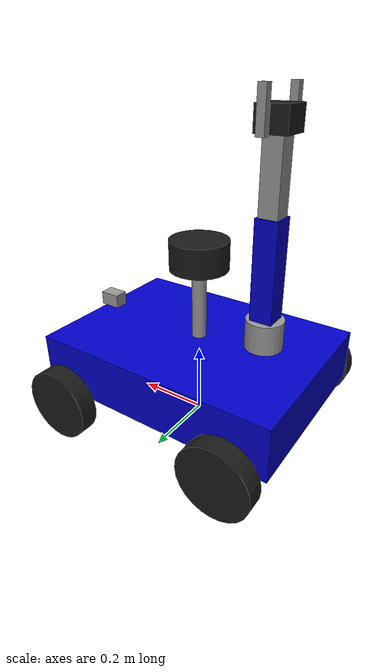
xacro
<?xml version="1.0"?>

<robot name="disaster_rover" xmlns:xacro="http://www.ros.org/wiki/xacro">

  <!-- PROPERTIES -->

  <xacro:property name="base_length" value="0.7"/>
  <xacro:property name="base_width"  value="0.5"/>
  <xacro:property name="base_height" value="0.15"/>

  <xacro:property name="wheel_radius" value="0.10"/>
  <xacro:property name="wheel_width"  value="0.05"/>

  <xacro:include filename="mobile_base_gazebo_plugins.xacro"/>

  <!-- MATERIALS -->

  <material name="blue">
    <color rgba="0 0 0.8 1"/>
  </material>

  <material name="black">
    <color rgba="0.1 0.1 0.1 1"/>
  </material>

  <material name="grey">
    <color rgba="0.6 0.6 0.6 1"/>
  </material>

  <!-- INERTIA MACROS -->

  <xacro:macro name="box_inertia" params="m x y z">

    <inertial>

      <mass value="${m}"/>

      <inertia
        ixx="${(m/12)*(y*y+z*z)}"
        ixy="0"
        ixz="0"
        iyy="${(m/12)*(x*x+z*z)}"
        iyz="0"
        izz="${(m/12)*(x*x+y*y)}"/>

    </inertial>

  </xacro:macro>

  <xacro:macro name="cylinder_inertia" params="m r l">

    <inertial>

      <mass value="${m}"/>

      <inertia
        ixx="${(m/12)*(3*r*r+l*l)}"
        ixy="0"
        ixz="0"
        iyy="${(m/12)*(3*r*r+l*l)}"
        iyz="0"
        izz="${0.5*m*r*r}"/>

    </inertial>

  </xacro:macro>

  <!-- BASE -->

  <link name="base_footprint"/>

  <link name="base_link">

    <visual>

      <origin xyz="0 0 ${base_height/2}"/>

      <geometry>
        <box size="${base_length} ${base_width} ${base_height}"/>
      </geometry>

      <material name="blue"/>

    </visual>

    <collision name="base_link_collision">

      <origin xyz="0 0 ${base_height/2}"/>

      <geometry>
        <box size="${base_length} ${base_width} ${base_height}"/>
      </geometry>

    </collision>

    <xacro:box_inertia
      m="12"
      x="${base_length}"
      y="${base_width}"
      z="${base_height}"/>

  </link>

  <joint name="base_joint" type="fixed">

    <parent link="base_footprint"/>
    <child link="base_link"/>

    <origin xyz="0 0 ${wheel_radius}"/>

  </joint>

  <!-- WHEEL MACRO -->

  <xacro:macro name="wheel" params="name x y">

    <link name="${name}_link">

      <visual>

        <origin xyz="0 0 0" rpy="1.5708 0 0"/>

        <geometry>
          <cylinder radius="${wheel_radius}" length="${wheel_width}"/>
        </geometry>

        <material name="black"/>

      </visual>

      <collision>

        <origin xyz="0 0 0" rpy="1.5708 0 0"/>

        <geometry>
          <cylinder radius="${wheel_radius}" length="${wheel_width}"/>
        </geometry>

      </collision>

      <xacro:cylinder_inertia
        m="1"
        r="${wheel_radius}"
        l="${wheel_width}"/>

    </link>

    <joint name="${name}_joint" type="continuous">

      <parent link="base_link"/>
      <child link="${name}_link"/>

      <origin xyz="${x} ${y} 0"/>

      <axis xyz="0 1 0"/>

    </joint>

  </xacro:macro>

  <!-- WHEELS -->

  <xacro:wheel name="front_left_wheel"  x="0.25"  y="0.30"/>
  <xacro:wheel name="front_right_wheel" x="0.25"  y="-0.30"/>
  <xacro:wheel name="rear_left_wheel"   x="-0.25" y="0.30"/>
  <xacro:wheel name="rear_right_wheel"  x="-0.25" y="-0.30"/>

<!-- CAMERA LINK -->

<link name="camera_link">

  <visual>

    <geometry>
      <box size="0.06 0.04 0.04"/>
    </geometry>

    <material name="grey"/>

  </visual>

  <collision>

    <geometry>
      <box size="0.06 0.04 0.04"/>
    </geometry>

  </collision>

  <inertial>

    <mass value="0.2"/>

    <inertia
      ixx="0.0001"
      ixy="0.0"
      ixz="0.0"
      iyy="0.0001"
      iyz="0.0"
      izz="0.0001"/>

  </inertial>

</link>

<joint name="camera_joint" type="fixed">

  <parent link="base_link"/>
  <child link="camera_link"/>

  <origin xyz="0.32 0 0.18"/>

</joint>

<!-- CAMERA SENSOR -->

<gazebo reference="camera_link">

  <sensor name="camera_sensor" type="camera">

    <always_on>true</always_on>

    <update_rate>30</update_rate>

    <visualize>true</visualize>

    <topic>/camera</topic>

    <camera>

      <horizontal_fov>1.3962634</horizontal_fov>

      <image>

        <width>640</width>
        <height>480</height>
        <format>R8G8B8</format>

      </image>

      <clip>

        <near>0.1</near>
        <far>100</far>

      </clip>

    </camera>

  </sensor>

</gazebo>

  <!-- LIDAR POLE -->

  <link name="lidar_pole_link">

    <visual>

      <origin xyz="0 0 0.12"/>

      <geometry>
        <cylinder radius="0.02" length="0.24"/>
      </geometry>

      <material name="grey"/>

    </visual>

    <collision>

      <origin xyz="0 0 0.12"/>

      <geometry>
        <cylinder radius="0.02" length="0.24"/>
      </geometry>

    </collision>

    <xacro:cylinder_inertia
      m="0.2"
      r="0.02"
      l="0.24"/>

  </link>

  <joint name="lidar_pole_joint" type="fixed">

    <parent link="base_link"/>
    <child link="lidar_pole_link"/>

    <origin xyz="0 0 0.15"/>

  </joint>

  <!-- LIDAR -->

  <link name="lidar_link">

    <visual>

      <geometry>
        <cylinder radius="0.08" length="0.08"/>
      </geometry>

      <material name="black"/>

    </visual>

    <collision>

      <geometry>
        <cylinder radius="0.08" length="0.08"/>
      </geometry>

    </collision>

    <xacro:cylinder_inertia
      m="0.3"
      r="0.08"
      l="0.08"/>

  </link>

  <joint name="lidar_joint" type="fixed">

    <parent link="lidar_pole_link"/>
    <child link="lidar_link"/>

    <origin xyz="0 0 0.24"/>

  </joint>

  <!-- ARM BASE -->

  <link name="arm_base_link">

    <visual>

      <origin xyz="0 0 0.04"/>

      <geometry>
        <cylinder radius="0.05" length="0.08"/>
      </geometry>

      <material name="grey"/>

    </visual>

    <collision>

      <origin xyz="0 0 0.04"/>

      <geometry>
        <cylinder radius="0.05" length="0.08"/>
      </geometry>

    </collision>

    <xacro:cylinder_inertia
      m="1.0"
      r="0.05"
      l="0.08"/>

  </link>

  <gazebo reference="arm_base_link">
    <gravity>false</gravity>
    <selfCollide>false</selfCollide>
    <collide_without_contact>true</collide_without_contact>
  </gazebo>

  <joint name="arm_base_joint" type="revolute">

    <parent link="base_link"/>
    <child link="arm_base_link"/>

    <origin xyz="-0.20 0 0.18"/>

    <axis xyz="0 0 1"/>

    <limit lower="-3.14"
           upper="3.14"
           effort="100"
           velocity="2"/>

    <dynamics damping="10.0" friction="5.0"/>

  </joint>

  <!-- UPPER ARM -->

  <link name="upper_arm_link">

    <visual>

      <origin xyz="0 0 0.15"/>

      <geometry>
        <box size="0.06 0.06 0.30"/>
      </geometry>

      <material name="blue"/>

    </visual>

    <collision>

      <origin xyz="0 0 0.15"/>

      <geometry>
        <box size="0.06 0.06 0.30"/>
      </geometry>

    </collision>

    <xacro:box_inertia
      m="1.5"
      x="0.06"
      y="0.06"
      z="0.30"/>

  </link>

  <gazebo reference="upper_arm_link">
    <gravity>false</gravity>
    <selfCollide>false</selfCollide>
    <collide_without_contact>true</collide_without_contact>
  </gazebo>

  <joint name="shoulder_joint" type="revolute">

    <parent link="arm_base_link"/>
    <child link="upper_arm_link"/>

    <origin xyz="0 0 0.04"/>

    <axis xyz="1 0 0"/>

    <limit lower="-1.57"
           upper="1.57"
           effort="100"
           velocity="2"/>

    <dynamics damping="10.0" friction="5.0"/>

  </joint>

  <!-- FOREARM -->

  <link name="forearm_link">

    <visual>

      <origin xyz="0 0 0.125"/>

      <geometry>
        <box size="0.05 0.05 0.25"/>
      </geometry>

      <material name="grey"/>

    </visual>

    <collision>

      <origin xyz="0 0 0.125"/>

      <geometry>
        <box size="0.05 0.05 0.25"/>
      </geometry>

    </collision>

    <xacro:box_inertia
      m="1.2"
      x="0.05"
      y="0.05"
      z="0.25"/>

  </link>

  <gazebo reference="forearm_link">
    <gravity>false</gravity>
    <selfCollide>false</selfCollide>
    <collide_without_contact>true</collide_without_contact>
  </gazebo>

  <joint name="elbow_joint" type="revolute">

    <parent link="upper_arm_link"/>
    <child link="forearm_link"/>

    <origin xyz="0 0 0.26"/>

    <axis xyz="1 0 0"/>

    <limit lower="-1.57"
           upper="1.57"
           effort="80"
           velocity="2"/>

    <dynamics damping="10.0" friction="5.0"/>

  </joint>

  <!-- WRIST -->

  <link name="gripper_base_link">

    <visual>

      <origin xyz="0 0 0.03"/>

      <geometry>
        <box size="0.08 0.08 0.06"/>
      </geometry>

      <material name="black"/>

    </visual>

    <collision>

      <origin xyz="0 0 0.03"/>

      <geometry>
        <box size="0.08 0.08 0.06"/>
      </geometry>

    </collision>

    <xacro:box_inertia
      m="0.5"
      x="0.08"
      y="0.08"
      z="0.06"/>

  </link>

  <gazebo reference="gripper_base_link">
    <gravity>false</gravity>
    <selfCollide>false</selfCollide>
    <collide_without_contact>true</collide_without_contact>
  </gazebo>

  <joint name="wrist_joint" type="revolute">

    <parent link="forearm_link"/>
    <child link="gripper_base_link"/>

    <origin xyz="0 0 0.22"/>

    <axis xyz="1 0 0"/>

    <limit lower="-1.57"
           upper="1.57"
           effort="50"
           velocity="2"/>

    <dynamics damping="10.0" friction="5.0"/>

  </joint>

  <!-- LEFT FINGER -->

  <link name="left_finger_link">

    <visual>

      <origin xyz="0 0.045 0.05"/>

      <geometry>
        <box size="0.02 0.02 0.10"/>
      </geometry>

      <material name="grey"/>

    </visual>

    <xacro:box_inertia
      m="0.1"
      x="0.02"
      y="0.02"
      z="0.10"/>

  </link>

  <gazebo reference="left_finger_link">
    <gravity>false</gravity>
    <selfCollide>false</selfCollide>
  </gazebo>

  <joint name="left_finger_joint" type="prismatic">

    <parent link="gripper_base_link"/>
    <child link="left_finger_link"/>

    <origin xyz="0 0.03 0"/>

    <axis xyz="0 0 1"/>

    <limit lower="-0.4"
           upper="0.4"
           effort="20"
           velocity="2"/>

    <dynamics damping="2.0" friction="1.0"/>

  </joint>

  <!-- RIGHT FINGER -->

  <link name="right_finger_link">

    <visual>

      <origin xyz="0 -0.045 0.05"/>

      <geometry>
        <box size="0.02 0.02 0.10"/>
      </geometry>

      <material name="grey"/>

    </visual>

    <xacro:box_inertia
      m="0.1"
      x="0.02"
      y="0.02"
      z="0.10"/>

  </link>

  <gazebo reference="right_finger_link">
    <gravity>false</gravity>
    <selfCollide>false</selfCollide>
  </gazebo>

  <joint name="right_finger_joint" type="prismatic">

    <parent link="gripper_base_link"/>
    <child link="right_finger_link"/>

    <origin xyz="0 -0.03 0"/>

    <axis xyz="0 0 -1"/>

    <limit lower="-0.4"
           upper="0.4"
           effort="20"
           velocity="2"/>

    <dynamics damping="2.0" friction="1.0"/>

  </joint>

  <!-- IMU -->

  <gazebo reference="base_link">

    <sensor name="imu_sensor" type="imu">

      <always_on>true</always_on>

      <update_rate>100</update_rate>

      <visualize>true</visualize>

    </sensor>

  </gazebo>

  <!-- LIDAR SENSOR -->

  <gazebo reference="lidar_link">

      <sensor name="lidar_sensor" type="gpu_lidar">

      <topic>/scan</topic>

      <always_on>true</always_on>
      <visualize>true</visualize>
      <frame_id>lidar_link</frame_id>
      <gz_frame_id>lidar_link</gz_frame_id>
      <update_rate>30</update_rate>

      <ray>

        <scan>

          <horizontal>
            <samples>720</samples>
            <resolution>1</resolution>
            <min_angle>-3.14159</min_angle>
            <max_angle>3.14159</max_angle>
          </horizontal>

          <vertical>
            <samples>1</samples>
            <resolution>1</resolution>
            <min_angle>0</min_angle>
            <max_angle>0</max_angle>
          </vertical>

        </scan>

        <range>
          <min>0.12</min>
          <max>12.0</max>
          <resolution>0.01</resolution>
        </range>

      </ray>

    </sensor>

  </gazebo>

</robot>
